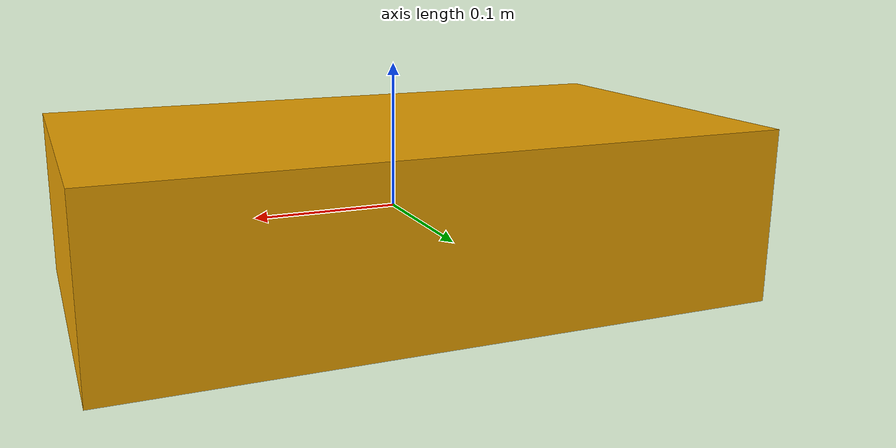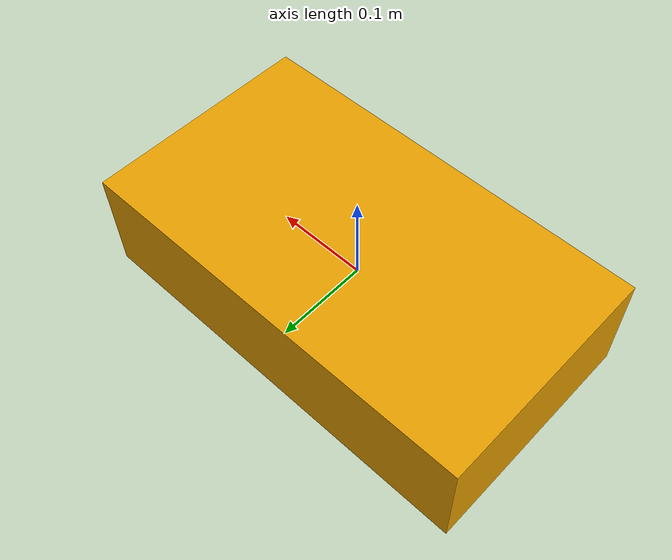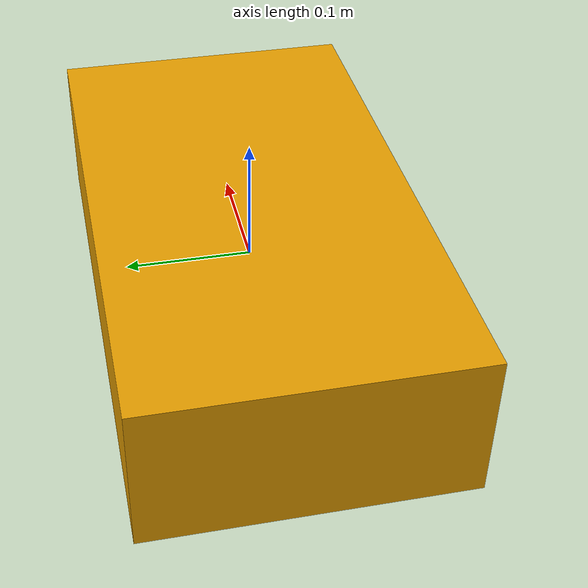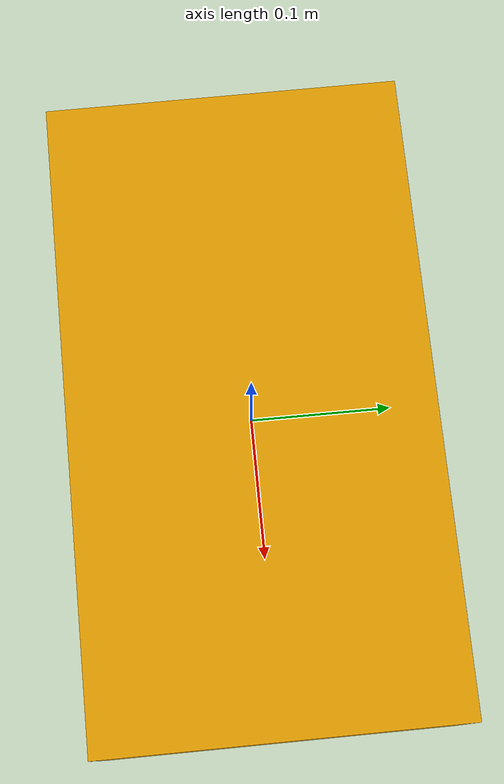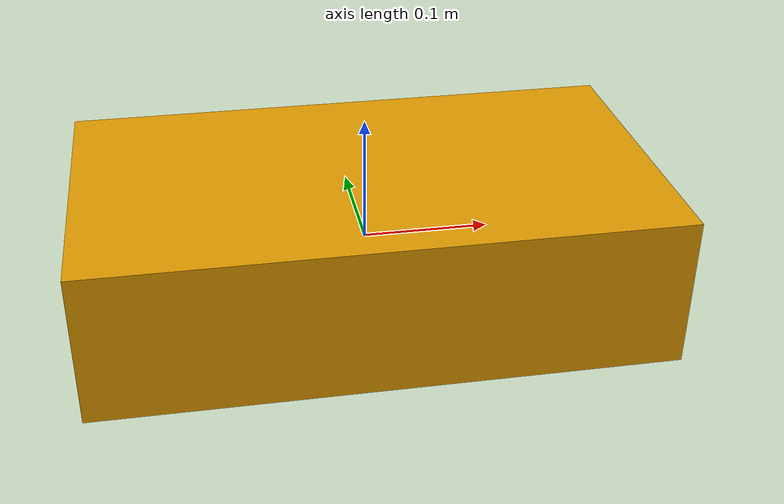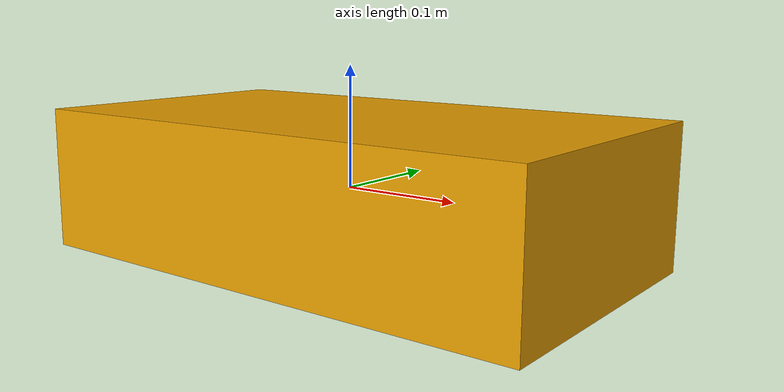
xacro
<?xml version="1.0"?>
<robot xmlns:xacro="http://www.ros.org/wiki/xacro" name="k9_drive_bench">

  <xacro:arg name="dry_run" default="true"/>
  <xacro:arg name="start_inhibited" default="true"/>
  <xacro:arg name="device" default="/dev/roboclaw"/>

  <xacro:include filename="$(find k9_drive_pkg)/urdf/k9_ros2_control.xacro"/>

  <link name="base_link">
    <visual>
      <geometry><box size="0.45 0.25 0.12"/></geometry>
    </visual>
    <collision>
      <geometry><box size="0.45 0.25 0.12"/></geometry>
    </collision>
    <inertial>
      <mass value="10.0"/>
      <inertia ixx="0.05" ixy="0" ixz="0"
               iyy="0.15" iyz="0" izz="0.18"/>
    </inertial>
  </link>

  <link name="drivewhl_l_link"/>
  <joint name="drivewhl_l_joint" type="continuous">
    <parent link="base_link"/>
    <child link="drivewhl_l_link"/>
    <origin xyz="0 0.1011 0" rpy="1.57079632679 0 0"/>
    <axis xyz="0 0 1"/>
  </joint>

  <link name="drivewhl_r_link"/>
  <joint name="drivewhl_r_joint" type="continuous">
    <parent link="base_link"/>
    <child link="drivewhl_r_link"/>
    <origin xyz="0 -0.1011 0" rpy="1.57079632679 0 0"/>
    <axis xyz="0 0 1"/>
  </joint>

  <xacro:k9_roboclaw_ros2_control
      name="K9RoboClawSystem"
      left_joint="drivewhl_l_joint"
      right_joint="drivewhl_r_joint"
      dry_run="$(arg dry_run)"
      start_inhibited="$(arg start_inhibited)"
      device="$(arg device)"/>

</robot>
